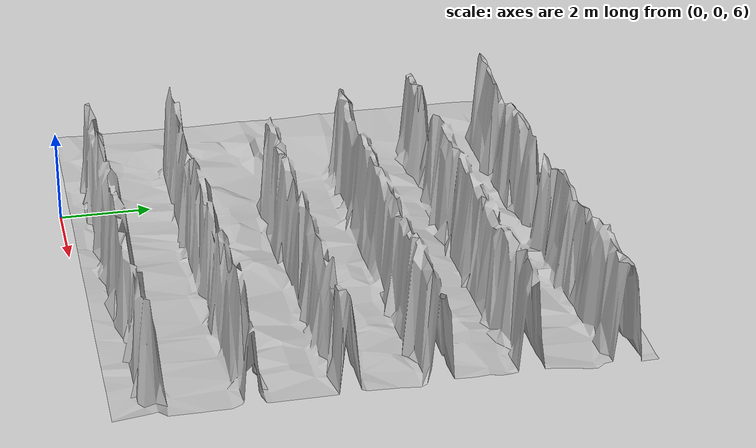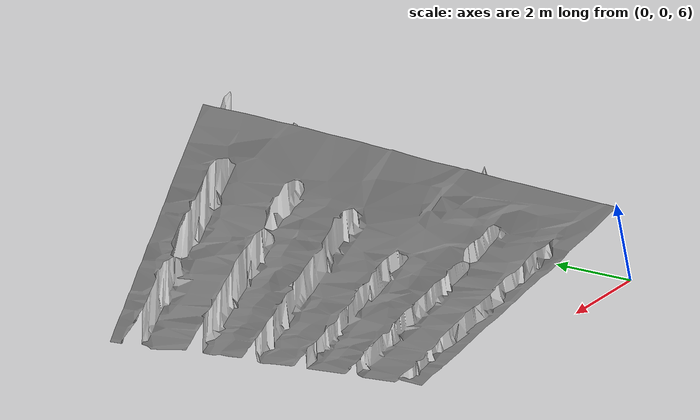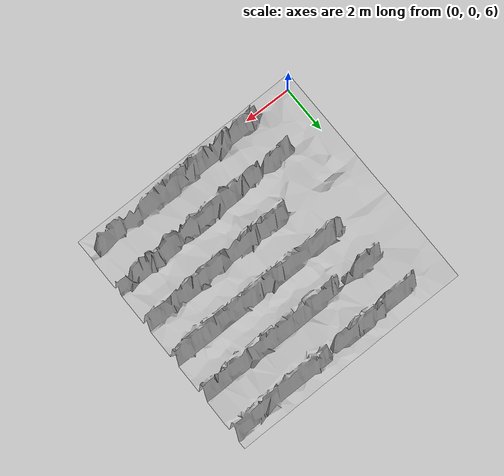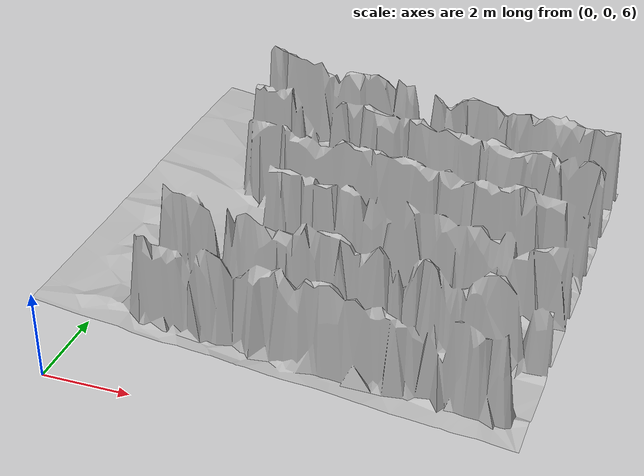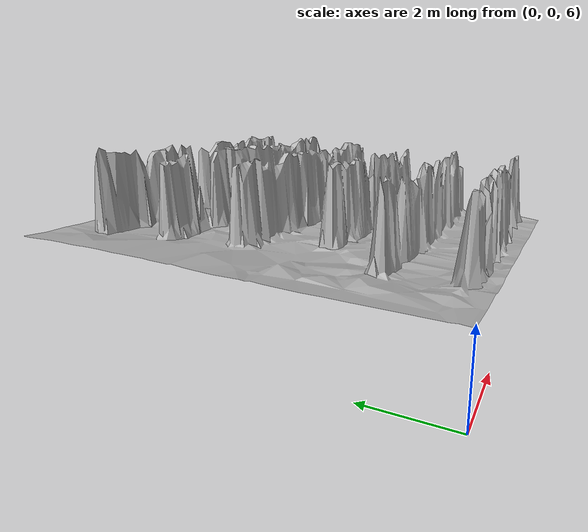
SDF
<?xml version="1.0" ?>
<sdf version="1.10">
    <model name="map_230_90">
        <link name="map_230_90_link">
            <visual name="map_230_90_visual">
                <geometry>
                    <mesh>
                        <uri>meshes/visual/map_230_90.obj</uri>
                    </mesh>
                </geometry>
            </visual>
            <collision name="map_230_90_collision">
                <surface>
                    <friction>
                        <ode>
                            <mu>2.316343837943928</mu>
                            <mu2>2.316343837943928</mu2>
                        </ode>
                        <bullet>
                            <friction>2.316343837943928</friction>
                            <friction2>2.316343837943928</friction2>
                        </bullet>
                    </friction>
                </surface>
                <geometry>
                    <mesh>
                        <uri>meshes/visual/map_230_90.obj</uri>
                    </mesh>
                </geometry>
            </collision>
        </link>
        <static>True</static>
    </model>
</sdf>
